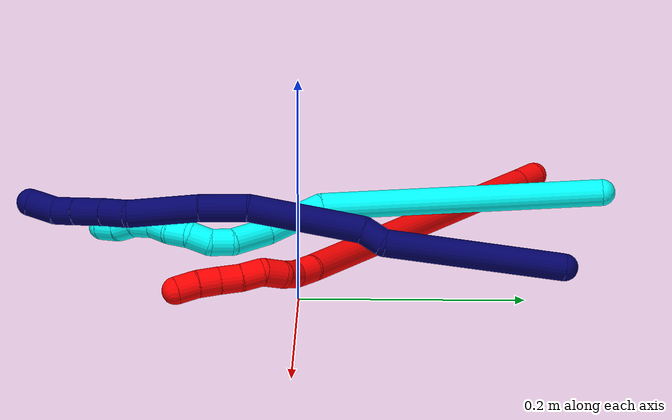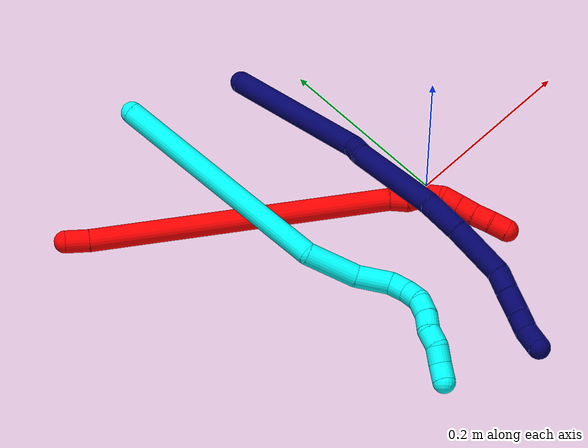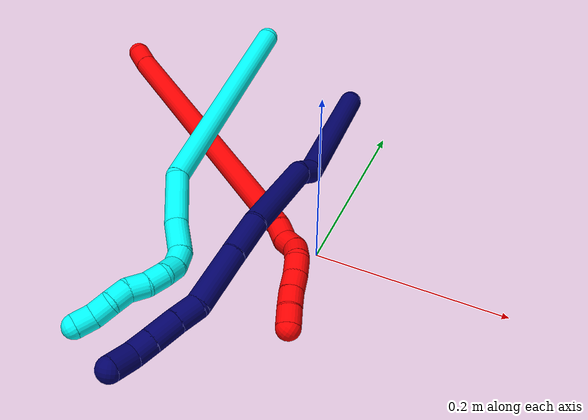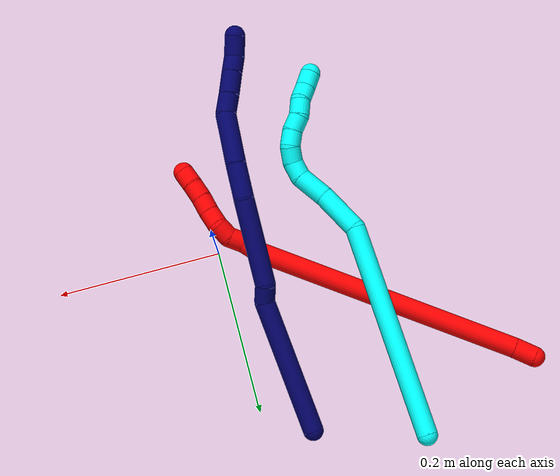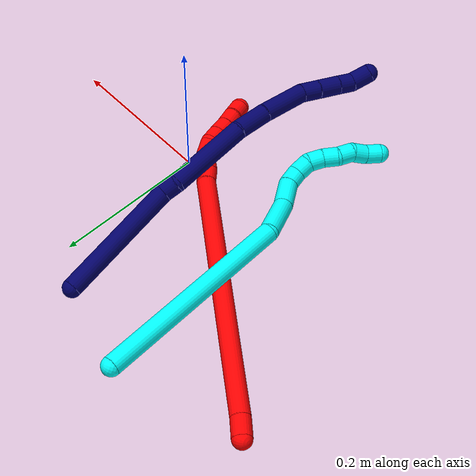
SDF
<sdf version="1.7">
 <world name="default">
  <model name="2">
   <static>0</static>
   <link name="2">
    <collision name="collision-cylinder-e_1_1_4">
     <pose>0.006738 -0.006937 -0.009121 2.49136 0.531512 1.35861</pose>
     <geometry><cylinder><radius>0.0125</radius><length>0.026587</length></cylinder></geometry>
     <surface>
      <friction><ode><mu>1.16</mu><mu2>1.16</mu2><slip1>0</slip1><slip2>0</slip2></ode></friction>
      <contact><ode><kp>1e+06</kp><kd>1</kd><max_vel>0</max_vel><min_depth>0.001</min_depth></ode></contact>
     </surface>
    </collision>
    <visual name="visual-cylinder-e_1_1_4">
     <pose>0.006738 -0.006937 -0.009121 2.49136 0.531512 1.35861</pose>
     <geometry><cylinder><radius>0.0125</radius><length>0.026587</length></cylinder></geometry>
     <material><ambient>1 0 0 1</ambient></material>
    </visual>
    <collision name="collision-cylinder-e_2_4_5">
     <pose>0.10514 -0.088674 -0.134784 2.57099 0.584716 1.59664</pose>
     <geometry><cylinder><radius>0.0125</radius><length>0.33214</length></cylinder></geometry>
     <surface>
      <friction><ode><mu>1.16</mu><mu2>1.16</mu2><slip1>0</slip1><slip2>0</slip2></ode></friction>
      <contact><ode><kp>1e+06</kp><kd>1</kd><max_vel>0</max_vel><min_depth>0.001</min_depth></ode></contact>
     </surface>
    </collision>
    <visual name="visual-cylinder-e_2_4_5">
     <pose>0.10514 -0.088674 -0.134784 2.57099 0.584716 1.59664</pose>
     <geometry><cylinder><radius>0.0125</radius><length>0.33214</length></cylinder></geometry>
     <material><ambient>1 0 0 1</ambient></material>
    </visual>
    <collision name="collision-cylinder-e_3_5_6">
     <pose>0.201883 -0.170031 -0.257575 2.332 0.510987 1.09494</pose>
     <geometry><cylinder><radius>0.0125</radius><length>0.020772</length></cylinder></geometry>
     <surface>
      <friction><ode><mu>1.16</mu><mu2>1.16</mu2><slip1>0</slip1><slip2>0</slip2></ode></friction>
      <contact><ode><kp>1e+06</kp><kd>1</kd><max_vel>0</max_vel><min_depth>0.001</min_depth></ode></contact>
     </surface>
    </collision>
    <visual name="visual-cylinder-e_3_5_6">
     <pose>0.201883 -0.170031 -0.257575 2.332 0.510987 1.09494</pose>
     <geometry><cylinder><radius>0.0125</radius><length>0.020772</length></cylinder></geometry>
     <material><ambient>1 0 0 1</ambient></material>
    </visual>
    <collision name="collision-cylinder-e_4_6_7">
     <pose>0.214603 -0.179924 -0.269675 2.62367 0.848381 2.08059</pose>
     <geometry><cylinder><radius>0.0125</radius><length>0.02037</length></cylinder></geometry>
     <surface>
      <friction><ode><mu>1.16</mu><mu2>1.16</mu2><slip1>0</slip1><slip2>0</slip2></ode></friction>
      <contact><ode><kp>1e+06</kp><kd>1</kd><max_vel>0</max_vel><min_depth>0.001</min_depth></ode></contact>
     </surface>
    </collision>
    <visual name="visual-cylinder-e_4_6_7">
     <pose>0.214603 -0.179924 -0.269675 2.62367 0.848381 2.08059</pose>
     <geometry><cylinder><radius>0.0125</radius><length>0.02037</length></cylinder></geometry>
     <material><ambient>1 0 0 1</ambient></material>
    </visual>
    <collision name="collision-cylinder-e_5_7_8">
     <pose>0.229305 -0.189886 -0.278191 1.9531 0.779598 1.09251</pose>
     <geometry><cylinder><radius>0.0125</radius><length>0.020089</length></cylinder></geometry>
     <surface>
      <friction><ode><mu>1.16</mu><mu2>1.16</mu2><slip1>0</slip1><slip2>0</slip2></ode></friction>
      <contact><ode><kp>1e+06</kp><kd>1</kd><max_vel>0</max_vel><min_depth>0.001</min_depth></ode></contact>
     </surface>
    </collision>
    <visual name="visual-cylinder-e_5_7_8">
     <pose>0.229305 -0.189886 -0.278191 1.9531 0.779598 1.09251</pose>
     <geometry><cylinder><radius>0.0125</radius><length>0.020089</length></cylinder></geometry>
     <material><ambient>1 0 0 1</ambient></material>
    </visual>
    <collision name="collision-cylinder-e_6_8_9">
     <pose>0.239333 -0.205536 -0.284036 1.9097 0.300767 0.421794</pose>
     <geometry><cylinder><radius>0.0125</radius><length>0.020031</length></cylinder></geometry>
     <surface>
      <friction><ode><mu>1.16</mu><mu2>1.16</mu2><slip1>0</slip1><slip2>0</slip2></ode></friction>
      <contact><ode><kp>1e+06</kp><kd>1</kd><max_vel>0</max_vel><min_depth>0.001</min_depth></ode></contact>
     </surface>
    </collision>
    <visual name="visual-cylinder-e_6_8_9">
     <pose>0.239333 -0.205536 -0.284036 1.9097 0.300767 0.421794</pose>
     <geometry><cylinder><radius>0.0125</radius><length>0.020031</length></cylinder></geometry>
     <material><ambient>1 0 0 1</ambient></material>
    </visual>
    <collision name="collision-cylinder-e_7_9_10">
     <pose>0.246002 -0.223632 -0.289204 1.78638 0.379137 0.468133</pose>
     <geometry><cylinder><radius>0.0125</radius><length>0.02</length></cylinder></geometry>
     <surface>
      <friction><ode><mu>1.16</mu><mu2>1.16</mu2><slip1>0</slip1><slip2>0</slip2></ode></friction>
      <contact><ode><kp>1e+06</kp><kd>1</kd><max_vel>0</max_vel><min_depth>0.001</min_depth></ode></contact>
     </surface>
    </collision>
    <visual name="visual-cylinder-e_7_9_10">
     <pose>0.246002 -0.223632 -0.289204 1.78638 0.379137 0.468133</pose>
     <geometry><cylinder><radius>0.0125</radius><length>0.02</length></cylinder></geometry>
     <material><ambient>1 0 0 1</ambient></material>
    </visual>
    <collision name="collision-cylinder-e_8_10_11">
     <pose>0.253755 -0.241416 -0.293985 1.88127 0.417043 0.564725</pose>
     <geometry><cylinder><radius>0.0125</radius><length>0.020007</length></cylinder></geometry>
     <surface>
      <friction><ode><mu>1.16</mu><mu2>1.16</mu2><slip1>0</slip1><slip2>0</slip2></ode></friction>
      <contact><ode><kp>1e+06</kp><kd>1</kd><max_vel>0</max_vel><min_depth>0.001</min_depth></ode></contact>
     </surface>
    </collision>
    <visual name="visual-cylinder-e_8_10_11">
     <pose>0.253755 -0.241416 -0.293985 1.88127 0.417043 0.564725</pose>
     <geometry><cylinder><radius>0.0125</radius><length>0.020007</length></cylinder></geometry>
     <material><ambient>1 0 0 1</ambient></material>
    </visual>
    <collision name="collision-cylinder-e_9_11_2">
     <pose>0.260708 -0.258996 -0.300376 1.95595 0.294256 0.43309</pose>
     <geometry><cylinder><radius>0.0125</radius><length>0.020004</length></cylinder></geometry>
     <surface>
      <friction><ode><mu>1.16</mu><mu2>1.16</mu2><slip1>0</slip1><slip2>0</slip2></ode></friction>
      <contact><ode><kp>1e+06</kp><kd>1</kd><max_vel>0</max_vel><min_depth>0.001</min_depth></ode></contact>
     </surface>
    </collision>
    <visual name="visual-cylinder-e_9_11_2">
     <pose>0.260708 -0.258996 -0.300376 1.95595 0.294256 0.43309</pose>
     <geometry><cylinder><radius>0.0125</radius><length>0.020004</length></cylinder></geometry>
     <material><ambient>1 0 0 1</ambient></material>
    </visual>
    <collision name="collision-sphere-2">
     <pose>0.263609 -0.267867 -0.303972 0 -0 0</pose>
     <geometry><sphere><radius>0.0125</radius></sphere></geometry>
     <surface>
      <friction><ode><mu>1.16</mu><mu2>1.16</mu2><slip1>0</slip1><slip2>0</slip2></ode></friction>
      <contact><ode><kp>1e+06</kp><kd>1</kd><max_vel>0</max_vel><min_depth>0.001</min_depth></ode></contact>
     </surface>
    </collision>
    <visual name="visual-sphere-2">
     <pose>0.263609 -0.267867 -0.303972 0 -0 0</pose>
     <geometry><sphere><radius>0.0125</radius></sphere></geometry>
     <material><ambient>1 0 0 1</ambient></material>
    </visual>
    <collision name="collision-sphere-11">
     <pose>0.257807 -0.250125 -0.29678 0 -0 0</pose>
     <geometry><sphere><radius>0.0125</radius></sphere></geometry>
     <surface>
      <friction><ode><mu>1.16</mu><mu2>1.16</mu2><slip1>0</slip1><slip2>0</slip2></ode></friction>
      <contact><ode><kp>1e+06</kp><kd>1</kd><max_vel>0</max_vel><min_depth>0.001</min_depth></ode></contact>
     </surface>
    </collision>
    <visual name="visual-sphere-11">
     <pose>0.257807 -0.250125 -0.29678 0 -0 0</pose>
     <geometry><sphere><radius>0.0125</radius></sphere></geometry>
     <material><ambient>1 0 0 1</ambient></material>
    </visual>
    <collision name="collision-sphere-10">
     <pose>0.249703 -0.232707 -0.291191 0 -0 0</pose>
     <geometry><sphere><radius>0.0125</radius></sphere></geometry>
     <surface>
      <friction><ode><mu>1.16</mu><mu2>1.16</mu2><slip1>0</slip1><slip2>0</slip2></ode></friction>
      <contact><ode><kp>1e+06</kp><kd>1</kd><max_vel>0</max_vel><min_depth>0.001</min_depth></ode></contact>
     </surface>
    </collision>
    <visual name="visual-sphere-10">
     <pose>0.249703 -0.232707 -0.291191 0 -0 0</pose>
     <geometry><sphere><radius>0.0125</radius></sphere></geometry>
     <material><ambient>1 0 0 1</ambient></material>
    </visual>
    <collision name="collision-sphere-9">
     <pose>0.242301 -0.214557 -0.287216 0 -0 0</pose>
     <geometry><sphere><radius>0.0125</radius></sphere></geometry>
     <surface>
      <friction><ode><mu>1.16</mu><mu2>1.16</mu2><slip1>0</slip1><slip2>0</slip2></ode></friction>
      <contact><ode><kp>1e+06</kp><kd>1</kd><max_vel>0</max_vel><min_depth>0.001</min_depth></ode></contact>
     </surface>
    </collision>
    <visual name="visual-sphere-9">
     <pose>0.242301 -0.214557 -0.287216 0 -0 0</pose>
     <geometry><sphere><radius>0.0125</radius></sphere></geometry>
     <material><ambient>1 0 0 1</ambient></material>
    </visual>
    <collision name="collision-sphere-4">
     <pose>0.013475 -0.013875 -0.018242 0 -0 0</pose>
     <geometry><sphere><radius>0.0125</radius></sphere></geometry>
     <surface>
      <friction><ode><mu>1.16</mu><mu2>1.16</mu2><slip1>0</slip1><slip2>0</slip2></ode></friction>
      <contact><ode><kp>1e+06</kp><kd>1</kd><max_vel>0</max_vel><min_depth>0.001</min_depth></ode></contact>
     </surface>
    </collision>
    <visual name="visual-sphere-4">
     <pose>0.013475 -0.013875 -0.018242 0 -0 0</pose>
     <geometry><sphere><radius>0.0125</radius></sphere></geometry>
     <material><ambient>1 0 0 1</ambient></material>
    </visual>
    <collision name="collision-sphere-1">
     <geometry><sphere><radius>0.0125</radius></sphere></geometry>
     <surface>
      <friction><ode><mu>1.16</mu><mu2>1.16</mu2><slip1>0</slip1><slip2>0</slip2></ode></friction>
      <contact><ode><kp>1e+06</kp><kd>1</kd><max_vel>0</max_vel><min_depth>0.001</min_depth></ode></contact>
     </surface>
    </collision>
    <visual name="visual-sphere-1">
     <geometry><sphere><radius>0.0125</radius></sphere></geometry>
     <material><ambient>1 0 0 1</ambient></material>
    </visual>
    <collision name="collision-sphere-8">
     <pose>0.236366 -0.196514 -0.280856 0 -0 0</pose>
     <geometry><sphere><radius>0.0125</radius></sphere></geometry>
     <surface>
      <friction><ode><mu>1.16</mu><mu2>1.16</mu2><slip1>0</slip1><slip2>0</slip2></ode></friction>
      <contact><ode><kp>1e+06</kp><kd>1</kd><max_vel>0</max_vel><min_depth>0.001</min_depth></ode></contact>
     </surface>
    </collision>
    <visual name="visual-sphere-8">
     <pose>0.236366 -0.196514 -0.280856 0 -0 0</pose>
     <geometry><sphere><radius>0.0125</radius></sphere></geometry>
     <material><ambient>1 0 0 1</ambient></material>
    </visual>
    <collision name="collision-sphere-5">
     <pose>0.196804 -0.163473 -0.251326 0 -0 0</pose>
     <geometry><sphere><radius>0.0125</radius></sphere></geometry>
     <surface>
      <friction><ode><mu>1.16</mu><mu2>1.16</mu2><slip1>0</slip1><slip2>0</slip2></ode></friction>
      <contact><ode><kp>1e+06</kp><kd>1</kd><max_vel>0</max_vel><min_depth>0.001</min_depth></ode></contact>
     </surface>
    </collision>
    <visual name="visual-sphere-5">
     <pose>0.196804 -0.163473 -0.251326 0 -0 0</pose>
     <geometry><sphere><radius>0.0125</radius></sphere></geometry>
     <material><ambient>1 0 0 1</ambient></material>
    </visual>
    <collision name="collision-sphere-6">
     <pose>0.206962 -0.17659 -0.263824 0 -0 0</pose>
     <geometry><sphere><radius>0.0125</radius></sphere></geometry>
     <surface>
      <friction><ode><mu>1.16</mu><mu2>1.16</mu2><slip1>0</slip1><slip2>0</slip2></ode></friction>
      <contact><ode><kp>1e+06</kp><kd>1</kd><max_vel>0</max_vel><min_depth>0.001</min_depth></ode></contact>
     </surface>
    </collision>
    <visual name="visual-sphere-6">
     <pose>0.206962 -0.17659 -0.263824 0 -0 0</pose>
     <geometry><sphere><radius>0.0125</radius></sphere></geometry>
     <material><ambient>1 0 0 1</ambient></material>
    </visual>
    <collision name="collision-sphere-7">
     <pose>0.222244 -0.183258 -0.275526 0 -0 0</pose>
     <geometry><sphere><radius>0.0125</radius></sphere></geometry>
     <surface>
      <friction><ode><mu>1.16</mu><mu2>1.16</mu2><slip1>0</slip1><slip2>0</slip2></ode></friction>
      <contact><ode><kp>1e+06</kp><kd>1</kd><max_vel>0</max_vel><min_depth>0.001</min_depth></ode></contact>
     </surface>
    </collision>
    <visual name="visual-sphere-7">
     <pose>0.222244 -0.183258 -0.275526 0 -0 0</pose>
     <geometry><sphere><radius>0.0125</radius></sphere></geometry>
     <material><ambient>1 0 0 1</ambient></material>
    </visual>
    <inertial>
     <pose>0.136556 -0.118497 -0.169612 0 -0 0</pose>
     <mass>0.5</mass>
     <inertia>
      <ixx>0.002524</ixx>
      <ixy>0</ixy>
      <ixz>0</ixz>
      <iyy>0.003525</iyy>
      <iyz>0</iyz>
      <izz>-0.000332</izz>
     </inertia>
    </inertial>
   </link>
   <pose>-0.337908 0.22176 0.0128 0.599448 -0.989627 -0.64606</pose>
  </model>
  <model name="3">
   <static>0</static>
   <link name="3">
    <collision name="collision-cylinder-e_1_1_4">
     <pose>0.033747 -0.100611 0.077132 0.916732 0.260166 0.12892</pose>
     <geometry><cylinder><radius>0.0125</radius><length>0.262381</length></cylinder></geometry>
     <surface>
      <friction><ode><mu>1.16</mu><mu2>1.16</mu2><slip1>0</slip1><slip2>0</slip2></ode></friction>
      <contact><ode><kp>1e+06</kp><kd>1</kd><max_vel>0</max_vel><min_depth>0.001</min_depth></ode></contact>
     </surface>
    </collision>
    <visual name="visual-cylinder-e_1_1_4">
     <pose>0.033747 -0.100611 0.077132 0.916732 0.260166 0.12892</pose>
     <geometry><cylinder><radius>0.0125</radius><length>0.262381</length></cylinder></geometry>
     <material><ambient>0.003922 1 0.996078 1</ambient></material>
    </visual>
    <collision name="collision-cylinder-e_2_4_5">
     <pose>0.06416 -0.228149 0.164715 1.20058 -0.114952 -0.078738</pose>
     <geometry><cylinder><radius>0.0125</radius><length>0.058152</length></cylinder></geometry>
     <surface>
      <friction><ode><mu>1.16</mu><mu2>1.16</mu2><slip1>0</slip1><slip2>0</slip2></ode></friction>
      <contact><ode><kp>1e+06</kp><kd>1</kd><max_vel>0</max_vel><min_depth>0.001</min_depth></ode></contact>
     </surface>
    </collision>
    <visual name="visual-cylinder-e_2_4_5">
     <pose>0.06416 -0.228149 0.164715 1.20058 -0.114952 -0.078738</pose>
     <geometry><cylinder><radius>0.0125</radius><length>0.058152</length></cylinder></geometry>
     <material><ambient>0.003922 1 0.996078 1</ambient></material>
    </visual>
    <collision name="collision-cylinder-e_3_5_6">
     <pose>0.061235 -0.274125 0.178157 1.41503 0.021247 0.018171</pose>
     <geometry><cylinder><radius>0.0125</radius><length>0.038572</length></cylinder></geometry>
     <surface>
      <friction><ode><mu>1.16</mu><mu2>1.16</mu2><slip1>0</slip1><slip2>0</slip2></ode></friction>
      <contact><ode><kp>1e+06</kp><kd>1</kd><max_vel>0</max_vel><min_depth>0.001</min_depth></ode></contact>
     </surface>
    </collision>
    <visual name="visual-cylinder-e_3_5_6">
     <pose>0.061235 -0.274125 0.178157 1.41503 0.021247 0.018171</pose>
     <geometry><cylinder><radius>0.0125</radius><length>0.038572</length></cylinder></geometry>
     <material><ambient>0.003922 1 0.996078 1</ambient></material>
    </visual>
    <collision name="collision-cylinder-e_4_6_7">
     <pose>0.064697 -0.301938 0.185486 1.11127 0.302616 0.188774</pose>
     <geometry><cylinder><radius>0.0125</radius><length>0.020489</length></cylinder></geometry>
     <surface>
      <friction><ode><mu>1.16</mu><mu2>1.16</mu2><slip1>0</slip1><slip2>0</slip2></ode></friction>
      <contact><ode><kp>1e+06</kp><kd>1</kd><max_vel>0</max_vel><min_depth>0.001</min_depth></ode></contact>
     </surface>
    </collision>
    <visual name="visual-cylinder-e_4_6_7">
     <pose>0.064697 -0.301938 0.185486 1.11127 0.302616 0.188774</pose>
     <geometry><cylinder><radius>0.0125</radius><length>0.020489</length></cylinder></geometry>
     <material><ambient>0.003922 1 0.996078 1</ambient></material>
    </visual>
    <collision name="collision-cylinder-e_5_7_8">
     <pose>0.074054 -0.316939 0.19475 0.902213 0.67047 0.334379</pose>
     <geometry><cylinder><radius>0.0125</radius><length>0.020288</length></cylinder></geometry>
     <surface>
      <friction><ode><mu>1.16</mu><mu2>1.16</mu2><slip1>0</slip1><slip2>0</slip2></ode></friction>
      <contact><ode><kp>1e+06</kp><kd>1</kd><max_vel>0</max_vel><min_depth>0.001</min_depth></ode></contact>
     </surface>
    </collision>
    <visual name="visual-cylinder-e_5_7_8">
     <pose>0.074054 -0.316939 0.19475 0.902213 0.67047 0.334379</pose>
     <geometry><cylinder><radius>0.0125</radius><length>0.020288</length></cylinder></geometry>
     <material><ambient>0.003922 1 0.996078 1</ambient></material>
    </visual>
    <collision name="collision-cylinder-e_6_8_9">
     <pose>0.084681 -0.32706 0.207819 0.445051 0.447035 0.10278</pose>
     <geometry><cylinder><radius>0.0125</radius><length>0.020008</length></cylinder></geometry>
     <surface>
      <friction><ode><mu>1.16</mu><mu2>1.16</mu2><slip1>0</slip1><slip2>0</slip2></ode></friction>
      <contact><ode><kp>1e+06</kp><kd>1</kd><max_vel>0</max_vel><min_depth>0.001</min_depth></ode></contact>
     </surface>
    </collision>
    <visual name="visual-cylinder-e_6_8_9">
     <pose>0.084681 -0.32706 0.207819 0.445051 0.447035 0.10278</pose>
     <geometry><cylinder><radius>0.0125</radius><length>0.020008</length></cylinder></geometry>
     <material><ambient>0.003922 1 0.996078 1</ambient></material>
    </visual>
    <collision name="collision-cylinder-e_7_9_10">
     <pose>0.094029 -0.332196 0.224569 0.144496 0.523715 0.038789</pose>
     <geometry><cylinder><radius>0.0125</radius><length>0.020089</length></cylinder></geometry>
     <surface>
      <friction><ode><mu>1.16</mu><mu2>1.16</mu2><slip1>0</slip1><slip2>0</slip2></ode></friction>
      <contact><ode><kp>1e+06</kp><kd>1</kd><max_vel>0</max_vel><min_depth>0.001</min_depth></ode></contact>
     </surface>
    </collision>
    <visual name="visual-cylinder-e_7_9_10">
     <pose>0.094029 -0.332196 0.224569 0.144496 0.523715 0.038789</pose>
     <geometry><cylinder><radius>0.0125</radius><length>0.020089</length></cylinder></geometry>
     <material><ambient>0.003922 1 0.996078 1</ambient></material>
    </visual>
    <collision name="collision-cylinder-e_8_10_11">
     <pose>0.102316 -0.338008 0.241467 0.502787 0.332094 0.08603</pose>
     <geometry><cylinder><radius>0.0125</radius><length>0.020018</length></cylinder></geometry>
     <surface>
      <friction><ode><mu>1.16</mu><mu2>1.16</mu2><slip1>0</slip1><slip2>0</slip2></ode></friction>
      <contact><ode><kp>1e+06</kp><kd>1</kd><max_vel>0</max_vel><min_depth>0.001</min_depth></ode></contact>
     </surface>
    </collision>
    <visual name="visual-cylinder-e_8_10_11">
     <pose>0.102316 -0.338008 0.241467 0.502787 0.332094 0.08603</pose>
     <geometry><cylinder><radius>0.0125</radius><length>0.020018</length></cylinder></geometry>
     <material><ambient>0.003922 1 0.996078 1</ambient></material>
    </visual>
    <collision name="collision-cylinder-e_9_11_12">
     <pose>0.105798 -0.34475 0.259515 0.220069 0.021925 0.002422</pose>
     <geometry><cylinder><radius>0.0125</radius><length>0.020001</length></cylinder></geometry>
     <surface>
      <friction><ode><mu>1.16</mu><mu2>1.16</mu2><slip1>0</slip1><slip2>0</slip2></ode></friction>
      <contact><ode><kp>1e+06</kp><kd>1</kd><max_vel>0</max_vel><min_depth>0.001</min_depth></ode></contact>
     </surface>
    </collision>
    <visual name="visual-cylinder-e_9_11_12">
     <pose>0.105798 -0.34475 0.259515 0.220069 0.021925 0.002422</pose>
     <geometry><cylinder><radius>0.0125</radius><length>0.020001</length></cylinder></geometry>
     <material><ambient>0.003922 1 0.996078 1</ambient></material>
    </visual>
    <collision name="collision-cylinder-e_10_12_2">
     <pose>0.109103 -0.349168 0.278519 0.237233 0.3137 0.037691</pose>
     <geometry><cylinder><radius>0.0125</radius><length>0.020003</length></cylinder></geometry>
     <surface>
      <friction><ode><mu>1.16</mu><mu2>1.16</mu2><slip1>0</slip1><slip2>0</slip2></ode></friction>
      <contact><ode><kp>1e+06</kp><kd>1</kd><max_vel>0</max_vel><min_depth>0.001</min_depth></ode></contact>
     </surface>
    </collision>
    <visual name="visual-cylinder-e_10_12_2">
     <pose>0.109103 -0.349168 0.278519 0.237233 0.3137 0.037691</pose>
     <geometry><cylinder><radius>0.0125</radius><length>0.020003</length></cylinder></geometry>
     <material><ambient>0.003922 1 0.996078 1</ambient></material>
    </visual>
    <collision name="collision-sphere-2">
     <pose>0.11219 -0.351404 0.287766 0 -0 0</pose>
     <geometry><sphere><radius>0.0125</radius></sphere></geometry>
     <surface>
      <friction><ode><mu>1.16</mu><mu2>1.16</mu2><slip1>0</slip1><slip2>0</slip2></ode></friction>
      <contact><ode><kp>1e+06</kp><kd>1</kd><max_vel>0</max_vel><min_depth>0.001</min_depth></ode></contact>
     </surface>
    </collision>
    <visual name="visual-sphere-2">
     <pose>0.11219 -0.351404 0.287766 0 -0 0</pose>
     <geometry><sphere><radius>0.0125</radius></sphere></geometry>
     <material><ambient>0.003922 1 0.996078 1</ambient></material>
    </visual>
    <collision name="collision-sphere-12">
     <pose>0.106017 -0.346932 0.269272 0 -0 0</pose>
     <geometry><sphere><radius>0.0125</radius></sphere></geometry>
     <surface>
      <friction><ode><mu>1.16</mu><mu2>1.16</mu2><slip1>0</slip1><slip2>0</slip2></ode></friction>
      <contact><ode><kp>1e+06</kp><kd>1</kd><max_vel>0</max_vel><min_depth>0.001</min_depth></ode></contact>
     </surface>
    </collision>
    <visual name="visual-sphere-12">
     <pose>0.106017 -0.346932 0.269272 0 -0 0</pose>
     <geometry><sphere><radius>0.0125</radius></sphere></geometry>
     <material><ambient>0.003922 1 0.996078 1</ambient></material>
    </visual>
    <collision name="collision-sphere-11">
     <pose>0.105579 -0.342567 0.249758 0 -0 0</pose>
     <geometry><sphere><radius>0.0125</radius></sphere></geometry>
     <surface>
      <friction><ode><mu>1.16</mu><mu2>1.16</mu2><slip1>0</slip1><slip2>0</slip2></ode></friction>
      <contact><ode><kp>1e+06</kp><kd>1</kd><max_vel>0</max_vel><min_depth>0.001</min_depth></ode></contact>
     </surface>
    </collision>
    <visual name="visual-sphere-11">
     <pose>0.105579 -0.342567 0.249758 0 -0 0</pose>
     <geometry><sphere><radius>0.0125</radius></sphere></geometry>
     <material><ambient>0.003922 1 0.996078 1</ambient></material>
    </visual>
    <collision name="collision-sphere-10">
     <pose>0.099053 -0.333448 0.233176 0 -0 0</pose>
     <geometry><sphere><radius>0.0125</radius></sphere></geometry>
     <surface>
      <friction><ode><mu>1.16</mu><mu2>1.16</mu2><slip1>0</slip1><slip2>0</slip2></ode></friction>
      <contact><ode><kp>1e+06</kp><kd>1</kd><max_vel>0</max_vel><min_depth>0.001</min_depth></ode></contact>
     </surface>
    </collision>
    <visual name="visual-sphere-10">
     <pose>0.099053 -0.333448 0.233176 0 -0 0</pose>
     <geometry><sphere><radius>0.0125</radius></sphere></geometry>
     <material><ambient>0.003922 1 0.996078 1</ambient></material>
    </visual>
    <collision name="collision-sphere-9">
     <pose>0.089006 -0.330943 0.215961 0 -0 0</pose>
     <geometry><sphere><radius>0.0125</radius></sphere></geometry>
     <surface>
      <friction><ode><mu>1.16</mu><mu2>1.16</mu2><slip1>0</slip1><slip2>0</slip2></ode></friction>
      <contact><ode><kp>1e+06</kp><kd>1</kd><max_vel>0</max_vel><min_depth>0.001</min_depth></ode></contact>
     </surface>
    </collision>
    <visual name="visual-sphere-9">
     <pose>0.089006 -0.330943 0.215961 0 -0 0</pose>
     <geometry><sphere><radius>0.0125</radius></sphere></geometry>
     <material><ambient>0.003922 1 0.996078 1</ambient></material>
    </visual>
    <collision name="collision-sphere-4">
     <pose>0.067495 -0.201222 0.154265 0 -0 0</pose>
     <geometry><sphere><radius>0.0125</radius></sphere></geometry>
     <surface>
      <friction><ode><mu>1.16</mu><mu2>1.16</mu2><slip1>0</slip1><slip2>0</slip2></ode></friction>
      <contact><ode><kp>1e+06</kp><kd>1</kd><max_vel>0</max_vel><min_depth>0.001</min_depth></ode></contact>
     </surface>
    </collision>
    <visual name="visual-sphere-4">
     <pose>0.067495 -0.201222 0.154265 0 -0 0</pose>
     <geometry><sphere><radius>0.0125</radius></sphere></geometry>
     <material><ambient>0.003922 1 0.996078 1</ambient></material>
    </visual>
    <collision name="collision-sphere-1">
     <geometry><sphere><radius>0.0125</radius></sphere></geometry>
     <surface>
      <friction><ode><mu>1.16</mu><mu2>1.16</mu2><slip1>0</slip1><slip2>0</slip2></ode></friction>
      <contact><ode><kp>1e+06</kp><kd>1</kd><max_vel>0</max_vel><min_depth>0.001</min_depth></ode></contact>
     </surface>
    </collision>
    <visual name="visual-sphere-1">
     <geometry><sphere><radius>0.0125</radius></sphere></geometry>
     <material><ambient>0.003922 1 0.996078 1</ambient></material>
    </visual>
    <collision name="collision-sphere-8">
     <pose>0.080357 -0.323176 0.199677 0 -0 0</pose>
     <geometry><sphere><radius>0.0125</radius></sphere></geometry>
     <surface>
      <friction><ode><mu>1.16</mu><mu2>1.16</mu2><slip1>0</slip1><slip2>0</slip2></ode></friction>
      <contact><ode><kp>1e+06</kp><kd>1</kd><max_vel>0</max_vel><min_depth>0.001</min_depth></ode></contact>
     </surface>
    </collision>
    <visual name="visual-sphere-8">
     <pose>0.080357 -0.323176 0.199677 0 -0 0</pose>
     <geometry><sphere><radius>0.0125</radius></sphere></geometry>
     <material><ambient>0.003922 1 0.996078 1</ambient></material>
    </visual>
    <collision name="collision-sphere-5">
     <pose>0.060825 -0.255077 0.175166 0 -0 0</pose>
     <geometry><sphere><radius>0.0125</radius></sphere></geometry>
     <surface>
      <friction><ode><mu>1.16</mu><mu2>1.16</mu2><slip1>0</slip1><slip2>0</slip2></ode></friction>
      <contact><ode><kp>1e+06</kp><kd>1</kd><max_vel>0</max_vel><min_depth>0.001</min_depth></ode></contact>
     </surface>
    </collision>
    <visual name="visual-sphere-5">
     <pose>0.060825 -0.255077 0.175166 0 -0 0</pose>
     <geometry><sphere><radius>0.0125</radius></sphere></geometry>
     <material><ambient>0.003922 1 0.996078 1</ambient></material>
    </visual>
    <collision name="collision-sphere-6">
     <pose>0.061644 -0.293173 0.181149 0 -0 0</pose>
     <geometry><sphere><radius>0.0125</radius></sphere></geometry>
     <surface>
      <friction><ode><mu>1.16</mu><mu2>1.16</mu2><slip1>0</slip1><slip2>0</slip2></ode></friction>
      <contact><ode><kp>1e+06</kp><kd>1</kd><max_vel>0</max_vel><min_depth>0.001</min_depth></ode></contact>
     </surface>
    </collision>
    <visual name="visual-sphere-6">
     <pose>0.061644 -0.293173 0.181149 0 -0 0</pose>
     <geometry><sphere><radius>0.0125</radius></sphere></geometry>
     <material><ambient>0.003922 1 0.996078 1</ambient></material>
    </visual>
    <collision name="collision-sphere-7">
     <pose>0.06775 -0.310702 0.189823 0 -0 0</pose>
     <geometry><sphere><radius>0.0125</radius></sphere></geometry>
     <surface>
      <friction><ode><mu>1.16</mu><mu2>1.16</mu2><slip1>0</slip1><slip2>0</slip2></ode></friction>
      <contact><ode><kp>1e+06</kp><kd>1</kd><max_vel>0</max_vel><min_depth>0.001</min_depth></ode></contact>
     </surface>
    </collision>
    <visual name="visual-sphere-7">
     <pose>0.06775 -0.310702 0.189823 0 -0 0</pose>
     <geometry><sphere><radius>0.0125</radius></sphere></geometry>
     <material><ambient>0.003922 1 0.996078 1</ambient></material>
    </visual>
    <inertial>
     <pose>0.055411 -0.193438 0.137409 0 -0 0</pose>
     <mass>0.5</mass>
     <inertia>
      <ixx>0.001683</ixx>
      <ixy>0</ixy>
      <ixz>0</ixz>
      <iyy>0.001131</iyy>
      <iyz>0</iyz>
      <izz>0.000821</izz>
     </inertia>
    </inertial>
   </link>
   <pose>-0.184164 0.278473 0.043296 3.03582 -1.14567 -2.2869</pose>
  </model>
  <model name="7">
   <static>0</static>
   <link name="7">
    <collision name="collision-cylinder-e_1_1_4">
     <pose>-0.057285 -0.04866 -0.034822 2.19193 -0.763611 -1.32616</pose>
     <geometry><cylinder><radius>0.0125</radius><length>0.165674</length></cylinder></geometry>
     <surface>
      <friction><ode><mu>1.16</mu><mu2>1.16</mu2><slip1>0</slip1><slip2>0</slip2></ode></friction>
      <contact><ode><kp>1e+06</kp><kd>1</kd><max_vel>0</max_vel><min_depth>0.001</min_depth></ode></contact>
     </surface>
    </collision>
    <visual name="visual-cylinder-e_1_1_4">
     <pose>-0.057285 -0.04866 -0.034822 2.19193 -0.763611 -1.32616</pose>
     <geometry><cylinder><radius>0.0125</radius><length>0.165674</length></cylinder></geometry>
     <material><ambient>0.003922 0 0.403922 1</ambient></material>
    </visual>
    <collision name="collision-cylinder-e_2_4_5">
     <pose>-0.124781 -0.100964 -0.07027 1.74073 -1.22351 -1.38809</pose>
     <geometry><cylinder><radius>0.0125</radius><length>0.021719</length></cylinder></geometry>
     <surface>
      <friction><ode><mu>1.16</mu><mu2>1.16</mu2><slip1>0</slip1><slip2>0</slip2></ode></friction>
      <contact><ode><kp>1e+06</kp><kd>1</kd><max_vel>0</max_vel><min_depth>0.001</min_depth></ode></contact>
     </surface>
    </collision>
    <visual name="visual-cylinder-e_2_4_5">
     <pose>-0.124781 -0.100964 -0.07027 1.74073 -1.22351 -1.38809</pose>
     <geometry><cylinder><radius>0.0125</radius><length>0.021719</length></cylinder></geometry>
     <material><ambient>0.003922 0 0.403922 1</ambient></material>
    </visual>
    <collision name="collision-cylinder-e_3_5_6">
     <pose>-0.17541 -0.131062 -0.091675 2.23661 -0.876662 -1.53438</pose>
     <geometry><cylinder><radius>0.0125</radius><length>0.105173</length></cylinder></geometry>
     <surface>
      <friction><ode><mu>1.16</mu><mu2>1.16</mu2><slip1>0</slip1><slip2>0</slip2></ode></friction>
      <contact><ode><kp>1e+06</kp><kd>1</kd><max_vel>0</max_vel><min_depth>0.001</min_depth></ode></contact>
     </surface>
    </collision>
    <visual name="visual-cylinder-e_3_5_6">
     <pose>-0.17541 -0.131062 -0.091675 2.23661 -0.876662 -1.53438</pose>
     <geometry><cylinder><radius>0.0125</radius><length>0.105173</length></cylinder></geometry>
     <material><ambient>0.003922 0 0.403922 1</ambient></material>
    </visual>
    <collision name="collision-cylinder-e_4_6_7">
     <pose>-0.231322 -0.166519 -0.125054 2.52126 -0.785696 -1.8249</pose>
     <geometry><cylinder><radius>0.0125</radius><length>0.04381</length></cylinder></geometry>
     <surface>
      <friction><ode><mu>1.16</mu><mu2>1.16</mu2><slip1>0</slip1><slip2>0</slip2></ode></friction>
      <contact><ode><kp>1e+06</kp><kd>1</kd><max_vel>0</max_vel><min_depth>0.001</min_depth></ode></contact>
     </surface>
    </collision>
    <visual name="visual-cylinder-e_4_6_7">
     <pose>-0.231322 -0.166519 -0.125054 2.52126 -0.785696 -1.8249</pose>
     <geometry><cylinder><radius>0.0125</radius><length>0.04381</length></cylinder></geometry>
     <material><ambient>0.003922 0 0.403922 1</ambient></material>
    </visual>
    <collision name="collision-cylinder-e_5_7_8">
     <pose>-0.268856 -0.186939 -0.158244 2.63525 -0.752404 -1.98188</pose>
     <geometry><cylinder><radius>0.0125</radius><length>0.064501</length></cylinder></geometry>
     <surface>
      <friction><ode><mu>1.16</mu><mu2>1.16</mu2><slip1>0</slip1><slip2>0</slip2></ode></friction>
      <contact><ode><kp>1e+06</kp><kd>1</kd><max_vel>0</max_vel><min_depth>0.001</min_depth></ode></contact>
     </surface>
    </collision>
    <visual name="visual-cylinder-e_5_7_8">
     <pose>-0.268856 -0.186939 -0.158244 2.63525 -0.752404 -1.98188</pose>
     <geometry><cylinder><radius>0.0125</radius><length>0.064501</length></cylinder></geometry>
     <material><ambient>0.003922 0 0.403922 1</ambient></material>
    </visual>
    <collision name="collision-cylinder-e_6_8_9">
     <pose>-0.301274 -0.199109 -0.185337 3.02658 -1.00808 -2.9336</pose>
     <geometry><cylinder><radius>0.0125</radius><length>0.024539</length></cylinder></geometry>
     <surface>
      <friction><ode><mu>1.16</mu><mu2>1.16</mu2><slip1>0</slip1><slip2>0</slip2></ode></friction>
      <contact><ode><kp>1e+06</kp><kd>1</kd><max_vel>0</max_vel><min_depth>0.001</min_depth></ode></contact>
     </surface>
    </collision>
    <visual name="visual-cylinder-e_6_8_9">
     <pose>-0.301274 -0.199109 -0.185337 3.02658 -1.00808 -2.9336</pose>
     <geometry><cylinder><radius>0.0125</radius><length>0.024539</length></cylinder></geometry>
     <material><ambient>0.003922 0 0.403922 1</ambient></material>
    </visual>
    <collision name="collision-cylinder-e_7_9_10">
     <pose>-0.323263 -0.201007 -0.199849 2.99933 -0.962178 -2.87027</pose>
     <geometry><cylinder><radius>0.0125</radius><length>0.028306</length></cylinder></geometry>
     <surface>
      <friction><ode><mu>1.16</mu><mu2>1.16</mu2><slip1>0</slip1><slip2>0</slip2></ode></friction>
      <contact><ode><kp>1e+06</kp><kd>1</kd><max_vel>0</max_vel><min_depth>0.001</min_depth></ode></contact>
     </surface>
    </collision>
    <visual name="visual-cylinder-e_7_9_10">
     <pose>-0.323263 -0.201007 -0.199849 2.99933 -0.962178 -2.87027</pose>
     <geometry><cylinder><radius>0.0125</radius><length>0.028306</length></cylinder></geometry>
     <material><ambient>0.003922 0 0.403922 1</ambient></material>
    </visual>
    <collision name="collision-cylinder-e_8_10_11">
     <pose>-0.343392 -0.202825 -0.213642 3.02613 -0.97128 -2.92345</pose>
     <geometry><cylinder><radius>0.0125</radius><length>0.020635</length></cylinder></geometry>
     <surface>
      <friction><ode><mu>1.16</mu><mu2>1.16</mu2><slip1>0</slip1><slip2>0</slip2></ode></friction>
      <contact><ode><kp>1e+06</kp><kd>1</kd><max_vel>0</max_vel><min_depth>0.001</min_depth></ode></contact>
     </surface>
    </collision>
    <visual name="visual-cylinder-e_8_10_11">
     <pose>-0.343392 -0.202825 -0.213642 3.02613 -0.97128 -2.92345</pose>
     <geometry><cylinder><radius>0.0125</radius><length>0.020635</length></cylinder></geometry>
     <material><ambient>0.003922 0 0.403922 1</ambient></material>
    </visual>
    <collision name="collision-cylinder-e_9_11_2">
     <pose>-0.363532 -0.207051 -0.223512 2.42571 -1.13458 -2.07988</pose>
     <geometry><cylinder><radius>0.0125</radius><length>0.025643</length></cylinder></geometry>
     <surface>
      <friction><ode><mu>1.16</mu><mu2>1.16</mu2><slip1>0</slip1><slip2>0</slip2></ode></friction>
      <contact><ode><kp>1e+06</kp><kd>1</kd><max_vel>0</max_vel><min_depth>0.001</min_depth></ode></contact>
     </surface>
    </collision>
    <visual name="visual-cylinder-e_9_11_2">
     <pose>-0.363532 -0.207051 -0.223512 2.42571 -1.13458 -2.07988</pose>
     <geometry><cylinder><radius>0.0125</radius><length>0.025643</length></cylinder></geometry>
     <material><ambient>0.003922 0 0.403922 1</ambient></material>
    </visual>
    <collision name="collision-sphere-2">
     <pose>-0.375152 -0.210606 -0.227599 0 -0 0</pose>
     <geometry><sphere><radius>0.0125</radius></sphere></geometry>
     <surface>
      <friction><ode><mu>1.16</mu><mu2>1.16</mu2><slip1>0</slip1><slip2>0</slip2></ode></friction>
      <contact><ode><kp>1e+06</kp><kd>1</kd><max_vel>0</max_vel><min_depth>0.001</min_depth></ode></contact>
     </surface>
    </collision>
    <visual name="visual-sphere-2">
     <pose>-0.375152 -0.210606 -0.227599 0 -0 0</pose>
     <geometry><sphere><radius>0.0125</radius></sphere></geometry>
     <material><ambient>0.003922 0 0.403922 1</ambient></material>
    </visual>
    <collision name="collision-sphere-11">
     <pose>-0.351911 -0.203496 -0.219424 0 -0 0</pose>
     <geometry><sphere><radius>0.0125</radius></sphere></geometry>
     <surface>
      <friction><ode><mu>1.16</mu><mu2>1.16</mu2><slip1>0</slip1><slip2>0</slip2></ode></friction>
      <contact><ode><kp>1e+06</kp><kd>1</kd><max_vel>0</max_vel><min_depth>0.001</min_depth></ode></contact>
     </surface>
    </collision>
    <visual name="visual-sphere-11">
     <pose>-0.351911 -0.203496 -0.219424 0 -0 0</pose>
     <geometry><sphere><radius>0.0125</radius></sphere></geometry>
     <material><ambient>0.003922 0 0.403922 1</ambient></material>
    </visual>
    <collision name="collision-sphere-10">
     <pose>-0.334874 -0.202154 -0.207859 0 -0 0</pose>
     <geometry><sphere><radius>0.0125</radius></sphere></geometry>
     <surface>
      <friction><ode><mu>1.16</mu><mu2>1.16</mu2><slip1>0</slip1><slip2>0</slip2></ode></friction>
      <contact><ode><kp>1e+06</kp><kd>1</kd><max_vel>0</max_vel><min_depth>0.001</min_depth></ode></contact>
     </surface>
    </collision>
    <visual name="visual-sphere-10">
     <pose>-0.334874 -0.202154 -0.207859 0 -0 0</pose>
     <geometry><sphere><radius>0.0125</radius></sphere></geometry>
     <material><ambient>0.003922 0 0.403922 1</ambient></material>
    </visual>
    <collision name="collision-sphere-9">
     <pose>-0.311651 -0.19986 -0.191839 0 -0 0</pose>
     <geometry><sphere><radius>0.0125</radius></sphere></geometry>
     <surface>
      <friction><ode><mu>1.16</mu><mu2>1.16</mu2><slip1>0</slip1><slip2>0</slip2></ode></friction>
      <contact><ode><kp>1e+06</kp><kd>1</kd><max_vel>0</max_vel><min_depth>0.001</min_depth></ode></contact>
     </surface>
    </collision>
    <visual name="visual-sphere-9">
     <pose>-0.311651 -0.19986 -0.191839 0 -0 0</pose>
     <geometry><sphere><radius>0.0125</radius></sphere></geometry>
     <material><ambient>0.003922 0 0.403922 1</ambient></material>
    </visual>
    <collision name="collision-sphere-4">
     <pose>-0.114569 -0.097321 -0.069645 0 -0 0</pose>
     <geometry><sphere><radius>0.0125</radius></sphere></geometry>
     <surface>
      <friction><ode><mu>1.16</mu><mu2>1.16</mu2><slip1>0</slip1><slip2>0</slip2></ode></friction>
      <contact><ode><kp>1e+06</kp><kd>1</kd><max_vel>0</max_vel><min_depth>0.001</min_depth></ode></contact>
     </surface>
    </collision>
    <visual name="visual-sphere-4">
     <pose>-0.114569 -0.097321 -0.069645 0 -0 0</pose>
     <geometry><sphere><radius>0.0125</radius></sphere></geometry>
     <material><ambient>0.003922 0 0.403922 1</ambient></material>
    </visual>
    <collision name="collision-sphere-1">
     <geometry><sphere><radius>0.0125</radius></sphere></geometry>
     <surface>
      <friction><ode><mu>1.16</mu><mu2>1.16</mu2><slip1>0</slip1><slip2>0</slip2></ode></friction>
      <contact><ode><kp>1e+06</kp><kd>1</kd><max_vel>0</max_vel><min_depth>0.001</min_depth></ode></contact>
     </surface>
    </collision>
    <visual name="visual-sphere-1">
     <geometry><sphere><radius>0.0125</radius></sphere></geometry>
     <material><ambient>0.003922 0 0.403922 1</ambient></material>
    </visual>
    <collision name="collision-sphere-8">
     <pose>-0.290896 -0.198357 -0.178834 0 -0 0</pose>
     <geometry><sphere><radius>0.0125</radius></sphere></geometry>
     <surface>
      <friction><ode><mu>1.16</mu><mu2>1.16</mu2><slip1>0</slip1><slip2>0</slip2></ode></friction>
      <contact><ode><kp>1e+06</kp><kd>1</kd><max_vel>0</max_vel><min_depth>0.001</min_depth></ode></contact>
     </surface>
    </collision>
    <visual name="visual-sphere-8">
     <pose>-0.290896 -0.198357 -0.178834 0 -0 0</pose>
     <geometry><sphere><radius>0.0125</radius></sphere></geometry>
     <material><ambient>0.003922 0 0.403922 1</ambient></material>
    </visual>
    <collision name="collision-sphere-5">
     <pose>-0.134992 -0.104607 -0.070895 0 -0 0</pose>
     <geometry><sphere><radius>0.0125</radius></sphere></geometry>
     <surface>
      <friction><ode><mu>1.16</mu><mu2>1.16</mu2><slip1>0</slip1><slip2>0</slip2></ode></friction>
      <contact><ode><kp>1e+06</kp><kd>1</kd><max_vel>0</max_vel><min_depth>0.001</min_depth></ode></contact>
     </surface>
    </collision>
    <visual name="visual-sphere-5">
     <pose>-0.134992 -0.104607 -0.070895 0 -0 0</pose>
     <geometry><sphere><radius>0.0125</radius></sphere></geometry>
     <material><ambient>0.003922 0 0.403922 1</ambient></material>
    </visual>
    <collision name="collision-sphere-6">
     <pose>-0.215828 -0.157518 -0.112454 0 -0 0</pose>
     <geometry><sphere><radius>0.0125</radius></sphere></geometry>
     <surface>
      <friction><ode><mu>1.16</mu><mu2>1.16</mu2><slip1>0</slip1><slip2>0</slip2></ode></friction>
      <contact><ode><kp>1e+06</kp><kd>1</kd><max_vel>0</max_vel><min_depth>0.001</min_depth></ode></contact>
     </surface>
    </collision>
    <visual name="visual-sphere-6">
     <pose>-0.215828 -0.157518 -0.112454 0 -0 0</pose>
     <geometry><sphere><radius>0.0125</radius></sphere></geometry>
     <material><ambient>0.003922 0 0.403922 1</ambient></material>
    </visual>
    <collision name="collision-sphere-7">
     <pose>-0.246816 -0.17552 -0.137654 0 -0 0</pose>
     <geometry><sphere><radius>0.0125</radius></sphere></geometry>
     <surface>
      <friction><ode><mu>1.16</mu><mu2>1.16</mu2><slip1>0</slip1><slip2>0</slip2></ode></friction>
      <contact><ode><kp>1e+06</kp><kd>1</kd><max_vel>0</max_vel><min_depth>0.001</min_depth></ode></contact>
     </surface>
    </collision>
    <visual name="visual-sphere-7">
     <pose>-0.246816 -0.17552 -0.137654 0 -0 0</pose>
     <geometry><sphere><radius>0.0125</radius></sphere></geometry>
     <material><ambient>0.003922 0 0.403922 1</ambient></material>
    </visual>
    <inertial>
     <pose>-0.182152 -0.126924 -0.105935 0 -0 0</pose>
     <mass>0.5</mass>
     <inertia>
      <ixx>-0.000332</ixx>
      <ixy>0</ixy>
      <ixz>0</ixz>
      <iyy>-0.00013</iyy>
      <iyz>0</iyz>
      <izz>0.00065</izz>
     </inertia>
    </inertial>
   </link>
   <pose>-0.056075 0.2379 0.012361 -0.442519 0.421687 0.870712</pose>
  </model>
 </world>
</sdf>
